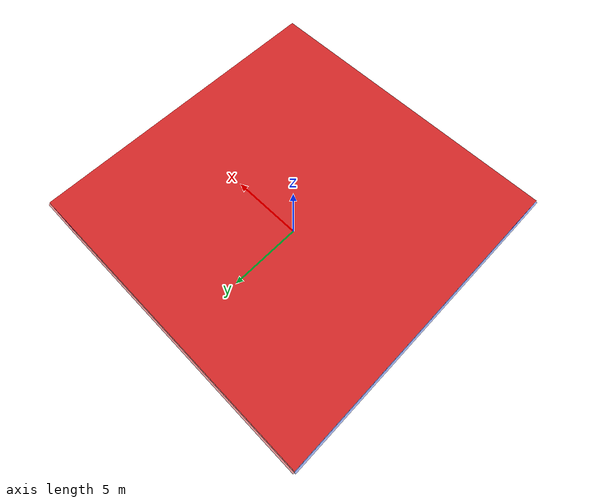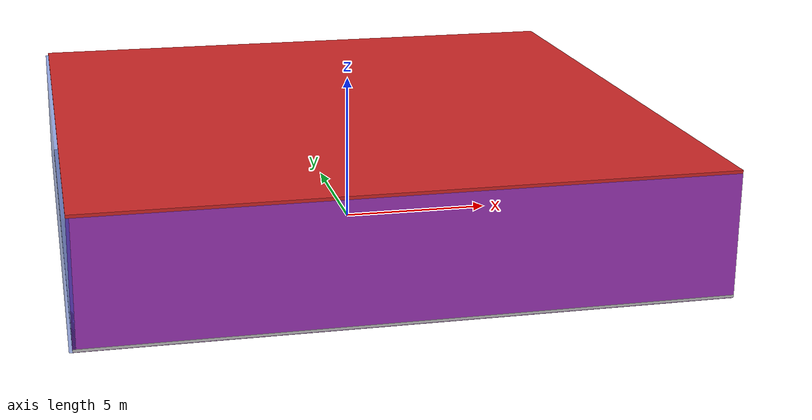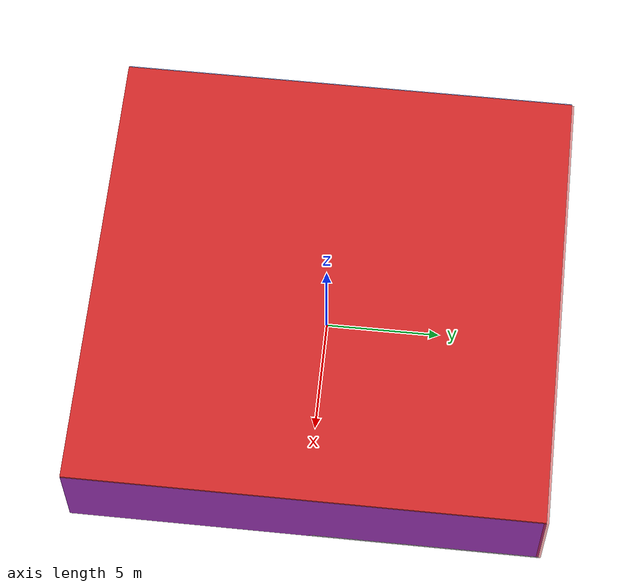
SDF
<sdf version="1.4">
 <world name="default">
  <physics type="ode">
   <max_step_size>0.001</max_step_size>
   <real_time_factor>1</real_time_factor>
   <real_time_update_rate>1000</real_time_update_rate>
   <gravity>0 0 -9.8</gravity>
  </physics>
  <scene><ambient>0.4 0.4 0.4 1</ambient><background>0.7 0.7 0.7 1</background><shadows>1</shadows></scene>
  <model name="Surrounding">
   <static>1</static>
   <link name="Ceiling">
    <collision name="Ceiling_Collision"><geometry><box><size>20 20 0.1</size></box></geometry></collision>
    <visual name="Ceiling_Visual">
     <geometry><box><size>20 20 0.1</size></box></geometry>
     <material>
      <script><uri>file://media/materials/scripts/gazebo.material</uri><name>Gazebo/Red</name></script>
     </material>
    </visual>
    <pose>0 0 4.05 0 0 0</pose>
   </link>
   <link name="Wall_South">
    <collision name="Wall_South_Collision">
     <geometry><box><size>20 0 4</size></box></geometry>
     <pose>0 0 2 0 -0 0</pose>
    </collision>
    <visual name="Wall_South_Visual">
     <pose>0 0 2 0 -0 0</pose>
     <geometry><box><size>20 0 4</size></box></geometry>
     <material>
      <script><uri>file://media/materials/scripts/gazebo.material</uri><name>Gazebo/Purple</name></script>
     </material>
    </visual>
    <velocity_decay><linear>0</linear><angular>0</angular></velocity_decay>
    <pose>0 -10 0 0 -0 0</pose>
   </link>
   <link name="Wall_East">
    <collision name="Wall_21_Collision">
     <geometry><box><size>20 0 4</size></box></geometry>
     <pose>0 0 2 0 -0 0</pose>
    </collision>
    <visual name="Wall_21_Visual">
     <pose>0 0 2 0 -0 0</pose>
     <geometry><box><size>20 0 4</size></box></geometry>
     <material>
      <script><uri>file://media/materials/scripts/gazebo.material</uri><name>Gazebo/PurpleGlow</name></script>
     </material>
    </visual>
    <velocity_decay><linear>0</linear><angular>0</angular></velocity_decay>
    <pose>10 0 0 0 -0 1.5708</pose>
   </link>
   <link name="Wall_North">
    <collision name="Wall_22_Collision">
     <geometry><box><size>20 0.2 4</size></box></geometry>
     <pose>0 0 2 0 -0 0</pose>
    </collision>
    <visual name="Wall_22_Visual">
     <pose>0 0 2 0 -0 0</pose>
     <geometry><box><size>20 0.2 4</size></box></geometry>
     <material>
      <script><uri>file://media/materials/scripts/gazebo.material</uri><name>Gazebo/RedTransparent</name></script>
     </material>
    </visual>
    <velocity_decay><linear>0</linear><angular>0</angular></velocity_decay>
    <pose>0 10 0 0 -0 0</pose>
   </link>
   <link name="Wall_West">
    <collision name="Wall_23_Collision">
     <geometry><box><size>20 0.2 4</size></box></geometry>
     <pose>0 0 2 0 -0 0</pose>
    </collision>
    <visual name="Wall_23_Visual">
     <pose>0 0 2 0 -0 0</pose>
     <geometry><box><size>20 0.2 4</size></box></geometry>
     <material>
      <script><uri>file://media/materials/scripts/gazebo.material</uri><name>Gazebo/BlueTransparent</name></script>
     </material>
    </visual>
    <velocity_decay><linear>0</linear><angular>0</angular></velocity_decay>
    <pose>-10 0 0 0 0 -1.5708</pose>
   </link>
   <link name="Ground_link">
    <collision name="collision">
     <pose>0 0 .05 0 -0 0</pose>
     <geometry><box><size>20 20 0.1</size></box></geometry>
    </collision>
    <visual name="visual">
     <pose>0 0 .05 0 -0 0</pose>
     <geometry><box><size>20 20 0.1</size></box></geometry>
     <material>
      <script><uri>file://media/materials/scripts/gazebo.material</uri><name>Gazebo/Pioneer2Body</name></script>
     </material>
    </visual>
   </link>
   <static>1</static>
  </model>
  <spherical_coordinates>
   <surface_model>EARTH_WGS84</surface_model>
   <latitude_deg>0</latitude_deg>
   <longitude_deg>0</longitude_deg>
   <elevation>0</elevation>
   <heading_deg>0</heading_deg>
  </spherical_coordinates>
  <light name="lightball_0" type="diffuse">
   <diffuse>0.8 0.8 0.8 1</diffuse>
   <specular>0.2 0.2 0.2 1</specular>
   <attenuation>
    <range>100</range>
    <constant>0.7</constant>
    <linear>0.01</linear>
    <quadratic>0.001</quadratic>
   </attenuation>
   <direction>-0.5 0.1 -0.9</direction>
   <pose>-3.73554089756 -6.64367155483 2.14342199901 0 0 0</pose>
  </light>
  <light name="lightball_1" type="diffuse">
   <diffuse>0.8 0.8 0.8 1</diffuse>
   <specular>0.2 0.2 0.2 1</specular>
   <attenuation>
    <range>100</range>
    <constant>0.7</constant>
    <linear>0.01</linear>
    <quadratic>0.001</quadratic>
   </attenuation>
   <direction>-0.5 0.1 -0.9</direction>
   <pose>-2.57101642405 3.82530814382 3.82817125338 0 0 0</pose>
  </light>
  <light name="lightball_2" type="diffuse">
   <diffuse>0.8 0.8 0.8 1</diffuse>
   <specular>0.2 0.2 0.2 1</specular>
   <attenuation>
    <range>100</range>
    <constant>0.7</constant>
    <linear>0.01</linear>
    <quadratic>0.001</quadratic>
   </attenuation>
   <direction>-0.5 0.1 -0.9</direction>
   <pose>-2.59130309943 5.35830631013 1.07427723574 0 0 0</pose>
  </light>
  <light name="lightball_3" type="diffuse">
   <diffuse>0.8 0.8 0.8 1</diffuse>
   <specular>0.2 0.2 0.2 1</specular>
   <attenuation>
    <range>100</range>
    <constant>0.7</constant>
    <linear>0.01</linear>
    <quadratic>0.001</quadratic>
   </attenuation>
   <direction>-0.5 0.1 -0.9</direction>
   <pose>2.14542730716 -3.40378533064 3.01673025769 0 0 0</pose>
  </light>
  <light name="lightball_4" type="diffuse">
   <diffuse>0.8 0.8 0.8 1</diffuse>
   <specular>0.2 0.2 0.2 1</specular>
   <attenuation>
    <range>100</range>
    <constant>0.7</constant>
    <linear>0.01</linear>
    <quadratic>0.001</quadratic>
   </attenuation>
   <direction>-0.5 0.1 -0.9</direction>
   <pose>-0.876509857911 0.215375685752 1.0984708483 0 0 0</pose>
  </light>
  <light name="lightball_5" type="diffuse">
   <diffuse>0.8 0.8 0.8 1</diffuse>
   <specular>0.2 0.2 0.2 1</specular>
   <attenuation>
    <range>100</range>
    <constant>0.7</constant>
    <linear>0.01</linear>
    <quadratic>0.001</quadratic>
   </attenuation>
   <direction>-0.5 0.1 -0.9</direction>
   <pose>-4.62139217231 4.00797971806 3.70838054377 0 0 0</pose>
  </light>
  <include><uri>model://cabinet</uri><pose>-6.77496415055 -3.95031010813 0 0 0 2.24047287805</pose></include>
  <include>
   <uri>model://construction_cone</uri>
   <pose>-7.11112071993 6.71016189909 0 0 0 0.714467936491</pose>
  </include>
  <include><uri>model://table</uri><pose>-4.63937616437 -7.50640775155 0 0 0 1.750685306</pose></include>
 </world>
</sdf>

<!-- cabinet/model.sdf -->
<sdf version="1.5">
  <model name="cabinet">
    <static>true</static>
    <link name="cabinet_bottom_plate">
      <inertial>
        <pose>0 0 -1 0 0 0</pose>
        <inertia>
          <ixx>2.050000</ixx>
          <ixy>0</ixy>
          <ixz>0</ixz>
          <iyy>2.050000</iyy>
          <iyz>0</iyz>
          <izz>2.050000</izz>
        </inertia>
        <mass>25.000000</mass>
      </inertial>
      <collision name="cabinet_bottom_plate_geom">
        <pose>0 0 0.010000 0 0 0</pose>
        <geometry>
          <box>
            <size>0.450000 0.450000 0.020000</size>
          </box>
        </geometry>
      </collision>
      <visual name="cabinet_bottom_plate_geom_visual">
        <pose>0 0 0.010000 0 0 0</pose>
        <geometry>
          <box>
            <size>0.450000 0.450000 0.020000</size>
          </box>
        </geometry>
        <material>
          <script>
            <uri>model://media/materials/scripts/gazebo.material</uri>
            <name>Gazebo/Wood</name>
          </script>
        </material>
      </visual>
      <collision name="cabinet_bottom_plate_geom_cabinet_back_plate">
        <pose>0.235000 0 0.510000 0 0 0</pose>
        <geometry>
          <box>
            <size>0.020000 0.450000 1.020000</size>
          </box>
        </geometry>
      </collision>
      <visual name="cabinet_bottom_plate_geom_cabinet_back_plate_visual">
        <pose>0.235000 0 0.510000 0 0 0</pose>
        <geometry>
          <box>
            <size>0.020000 0.450000 1.020000</size>
          </box>
        </geometry>
        <material>
          <script>
            <uri>model://media/materials/scripts/gazebo.material</uri>
            <name>Gazebo/Wood</name>
          </script>
        </material>
      </visual>
      <collision name="cabinet_bottom_plate_geom_cabinet_left_plate">
        <pose>0 0.235000 0.510000 0 0 0</pose>
        <geometry>
          <box>
            <size>0.450000 0.020000 1.020000</size>
          </box>
        </geometry>
      </collision>
      <visual name="cabinet_bottom_plate_geom_cabinet_left_plate_visual">
        <pose>0 0.235000 0.510000 0 0 0</pose>
        <geometry>
          <box>
            <size>0.450000 0.020000 1.020000</size>
          </box>
        </geometry>
        <material>
          <script>
            <uri>model://media/materials/scripts/gazebo.material</uri>
            <name>Gazebo/Wood</name>
          </script>
        </material>
      </visual>
      <collision name="cabinet_bottom_plate_geom_cabinet_middle_plate">
        <pose>0 0 0.510000 0 0 0</pose>
        <geometry>
          <box>
            <size>0.450000 0.450000 0.020000</size>
          </box>
        </geometry>
      </collision>
      <visual name="cabinet_bottom_plate_geom_cabinet_middle_plate_visual">
        <pose>0 0 0.510000 0 0 0</pose>
        <geometry>
          <box>
            <size>0.450000 0.450000 0.020000</size>
          </box>
        </geometry>
        <material>
          <script>
            <uri>model://media/materials/scripts/gazebo.material</uri>
            <name>Gazebo/Wood</name>
          </script>
        </material>
      </visual>
      <collision name="cabinet_bottom_plate_geom_cabinet_right_plate">
        <pose>0 -0.235000 0.510000 0 0 0</pose>
        <geometry>
          <box>
            <size>0.450000 0.020000 1.020000</size>
          </box>
        </geometry>
      </collision>
      <visual name="cabinet_bottom_plate_geom_cabinet_right_plate_visual">
        <pose>0 -0.235000 0.510000 0 0 0</pose>
        <geometry>
          <box>
            <size>0.450000 0.020000 1.020000</size>
          </box>
        </geometry>
        <material>
          <script>
            <uri>model://media/materials/scripts/gazebo.material</uri>
            <name>Gazebo/Wood</name>
          </script>
        </material>
      </visual>
      <collision name="cabinet_bottom_plate_geom_cabinet_top_plate">
        <pose>0 0 1.010000 0 0 0</pose>
        <geometry>
          <box>
            <size>0.450000 0.450000 0.020000</size>
          </box>
        </geometry>
      </collision>
      <visual name="cabinet_bottom_plate_geom_cabinet_top_plate_visual">
        <pose>0 0 1.010000 0 0 0</pose>
        <geometry>
          <box>
            <size>0.450000 0.450000 0.020000</size>
          </box>
        </geometry>
        <material>
          <script>
            <uri>model://media/materials/scripts/gazebo.material</uri>
            <name>Gazebo/Wood</name>
          </script>
        </material>
      </visual>
    </link>
  </model>
</sdf>

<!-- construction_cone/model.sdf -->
<sdf version="1.5">
  <model name="Construction Cone">
    <link name="link">
      <collision name="collision">
        <geometry>
          <mesh>
            <scale>10 10 10</scale>
            <uri>file://isr-testbed/construction_cone/meshes/construction_cone.dae</uri>
          </mesh>
        </geometry>
      </collision>
      <visual name="visual">
        <geometry>
          <mesh>
            <scale>10 10 10</scale>
            <uri>file://isr-testbed/construction_cone/meshes/construction_cone.dae</uri>
          </mesh>
        </geometry>
      </visual>
    </link>
  </model>
</sdf>

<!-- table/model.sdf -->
<sdf version="1.5">
  <model name="table">
    <static>true</static>
    <link name="link">
      <collision name="surface">
        <pose>0 0 1.0 0 0 0</pose>
        <geometry>
          <box>
            <size>1.5 0.8 0.03</size>
          </box>
        </geometry>
        <surface>
          <friction>
            <ode>
              <mu>0.6</mu>
              <mu2>0.6</mu2>
            </ode>
          </friction>
        </surface>
      </collision>
      <visual name="visual1">
        <pose>0 0 1.0 0 0 0</pose>
        <geometry>
          <box>
            <size>1.5 0.8 0.03</size>
          </box>
        </geometry>
        <material>
          <script>
            <uri>model://media/materials/scripts/gazebo.material</uri>
            <name>Gazebo/Wood</name>
          </script>
        </material>
      </visual>
      <collision name="front_left_leg">
        <pose>0.68 0.38 0.5 0 0 0</pose>
        <geometry>
          <cylinder>
            <radius>0.02</radius>
            <length>1.0</length>
          </cylinder>
        </geometry>
      </collision>
      <visual name="front_left_leg">
        <pose>0.68 0.38 0.5 0 0 0</pose>
        <geometry>
          <cylinder>
            <radius>0.02</radius>
            <length>1.0</length>
          </cylinder>
        </geometry>
        <material>
          <script>
            <uri>model://media/materials/scripts/gazebo.material</uri>
            <name>Gazebo/Grey</name>
          </script>
        </material>
      </visual>
      <collision name="front_right_leg">
        <pose>0.68 -0.38 0.5 0 0 0</pose>
        <geometry>
          <cylinder>
            <radius>0.02</radius>
            <length>1.0</length>
          </cylinder>
        </geometry>
      </collision>
      <visual name="front_right_leg">
        <pose>0.68 -0.38 0.5 0 0 0</pose>
        <geometry>
          <cylinder>
            <radius>0.02</radius>
            <length>1.0</length>
          </cylinder>
        </geometry>
        <material>
          <script>
            <uri>model://media/materials/scripts/gazebo.material</uri>
            <name>Gazebo/Grey</name>
          </script>
        </material>
      </visual>
      <collision name="back_right_leg">
        <pose>-0.68 -0.38 0.5 0 0 0</pose>
        <geometry>
          <cylinder>
            <radius>0.02</radius>
            <length>1.0</length>
          </cylinder>
        </geometry>
      </collision>
      <visual name="back_right_leg">
        <pose>-0.68 -0.38 0.5 0 0 0</pose>
        <geometry>
          <cylinder>
            <radius>0.02</radius>
            <length>1.0</length>
          </cylinder>
        </geometry>
        <material>
          <script>
            <uri>model://media/materials/scripts/gazebo.material</uri>
            <name>Gazebo/Grey</name>
          </script>
        </material>
      </visual>
      <collision name="back_left_leg">
        <pose>-0.68 0.38 0.5 0 0 0</pose>
        <geometry>
          <cylinder>
            <radius>0.02</radius>
            <length>1.0</length>
          </cylinder>
        </geometry>
      </collision>
      <visual name="back_left_leg">
        <pose>-0.68 0.38 0.5 0 0 0</pose>
        <geometry>
          <cylinder>
            <radius>0.02</radius>
            <length>1.0</length>
          </cylinder>
        </geometry>
        <material>
          <script>
            <uri>model://media/materials/scripts/gazebo.material</uri>
            <name>Gazebo/Grey</name>
          </script>
        </material>
      </visual>
    </link>
  </model>
</sdf>
